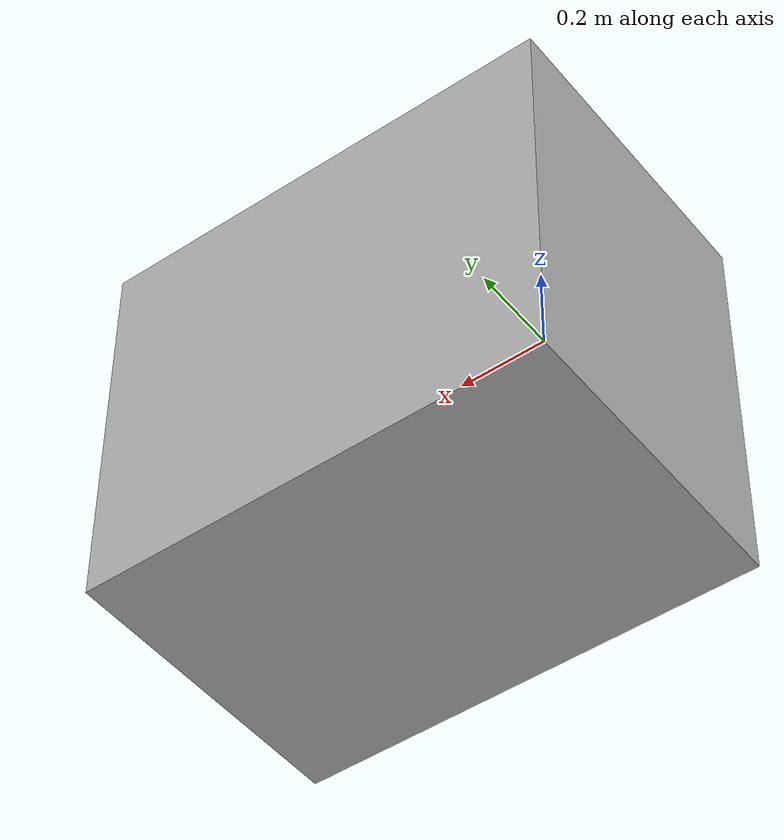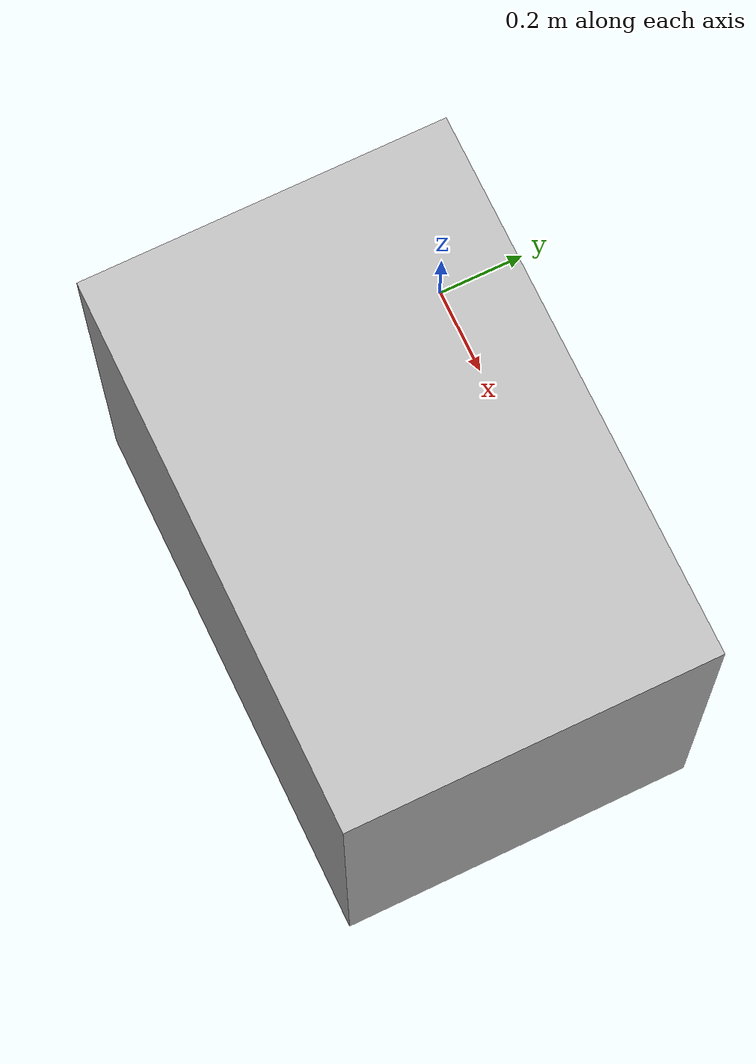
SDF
<sdf version="1.9">
<model name="box_1185x785x1010" canonical_link="node0_link">
  <link name="node0_link">
    <collision name="node0_collision">
      <pose>0.59250 -0.39250 0.50500 0 0 0</pose>
      <geometry>
        <box>
          <size>1.185 0.785 1.01</size>
        </box>
      </geometry>

      <surface>
      <friction>
        <ode>
          <mu>1</mu>
          <mu2>1</mu2>
          <slip1>0</slip1>
          <slip2>0</slip2>
        </ode>
      </friction>
      <contact>
        <ode>
          <soft_cfm>0</soft_cfm>
          <soft_erp>0.2</soft_erp>
          <kp>1e+13</kp>
          <kd>1</kd>
          <max_vel>0.01</max_vel>
          <min_depth>0</min_depth>
        </ode>
      </contact>
      </surface>

    </collision>
    <inertial>
      <inertia>
        <ixx>8.508996</ixx>
        <ixy>-0</ixy>
        <ixz>-0</ixz>
        <iyy>12.70658</iyy>
        <iyz>-0</iyz>
        <izz>10.59254</izz>
      </inertia>
      <pose>0.59250 -0.39250 0.50500 0 0 0</pose>
      <mass>50.0</mass>
    </inertial>
    <visual name="node0">
      <pose>0 0 0 0 0 0</pose>
      <geometry>
        <mesh>
          <uri>model://box_1185x785x1010/meshes/textured_1185x785x1010_low_poly.dae</uri>
          <scale>1.00000 1.00000 1.00000</scale>
        </mesh>
      </geometry>
    </visual>
  </link>
  <plugin filename="gz-sim-label-system" name="gz::sim::systems::Label">
    <label>4</label>
  </plugin>
</model>
</sdf>
